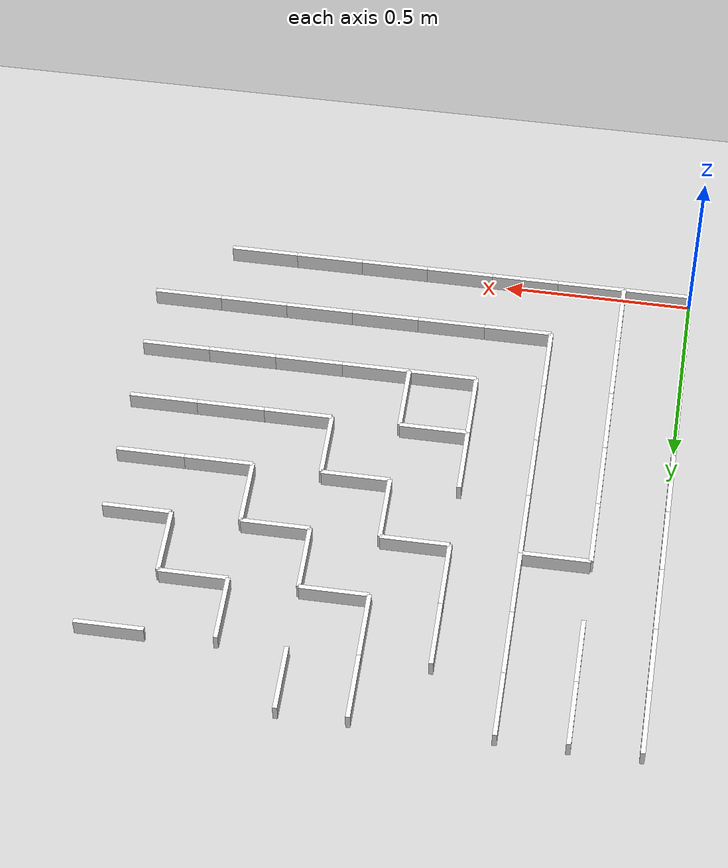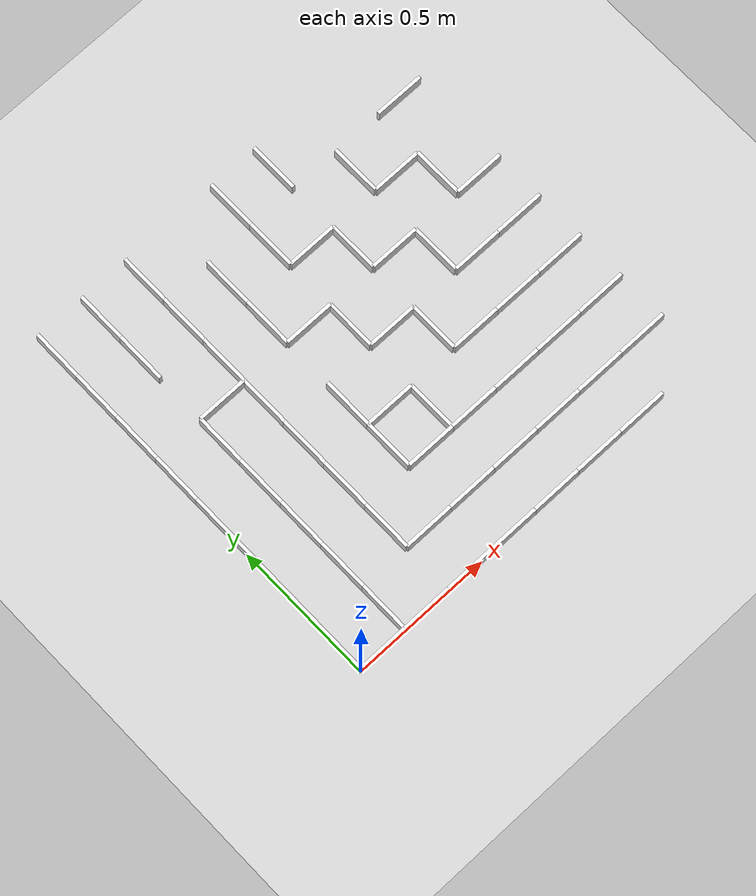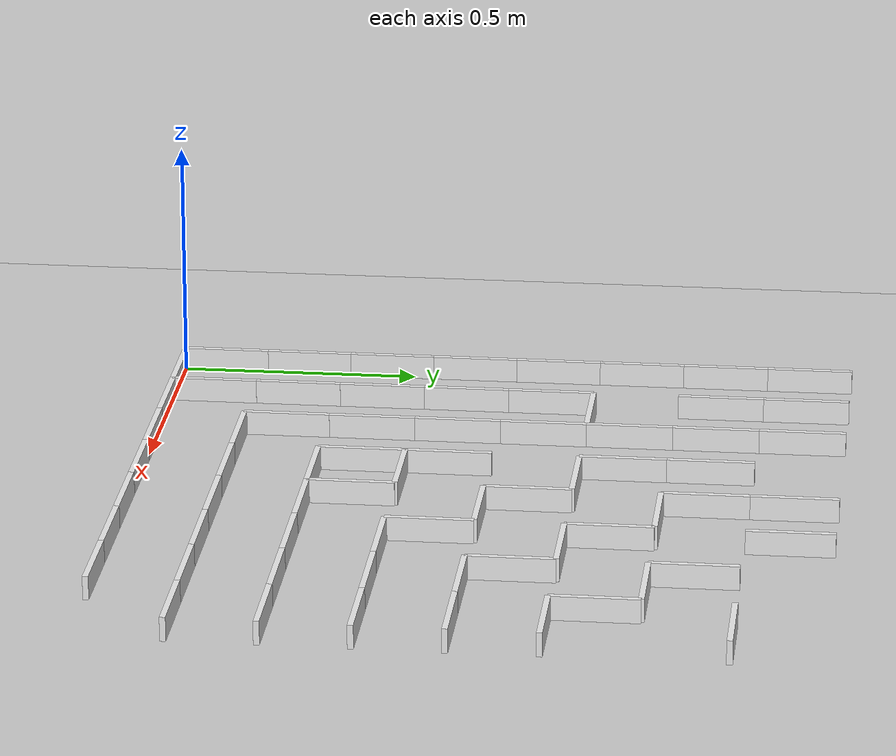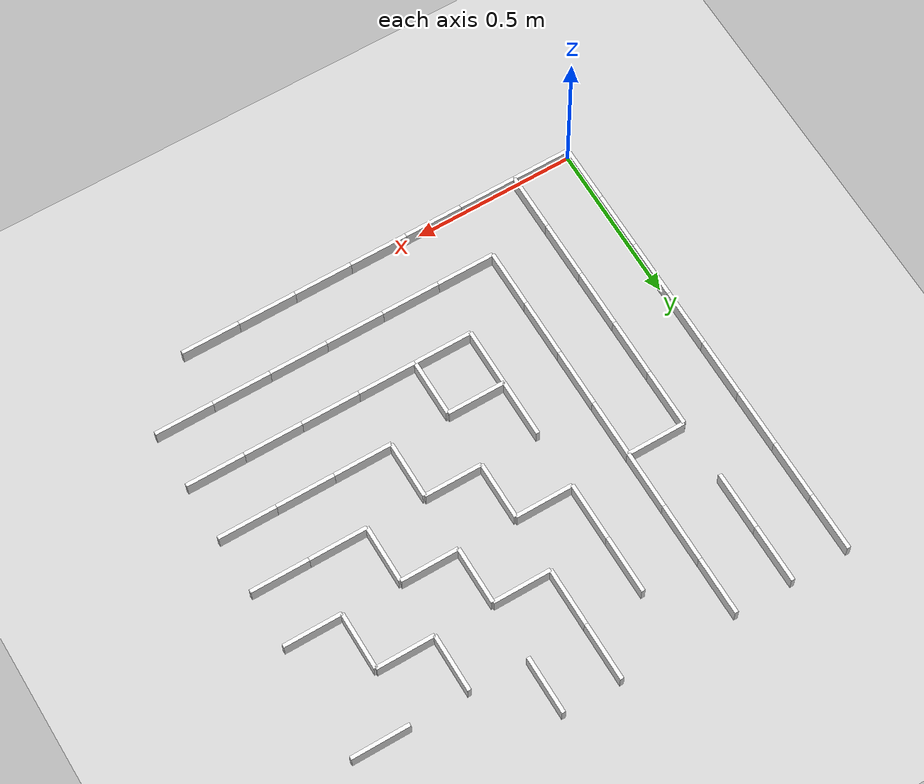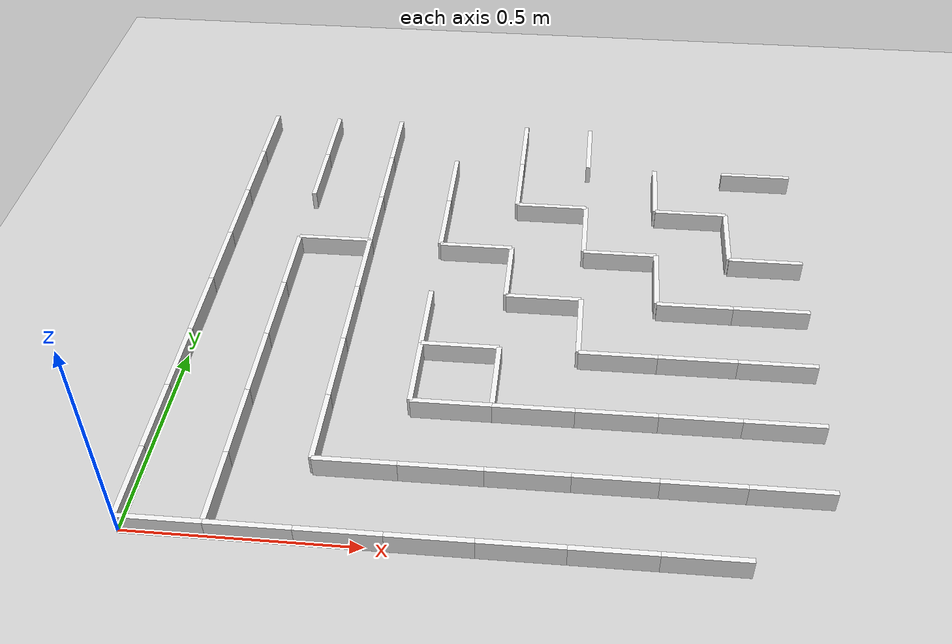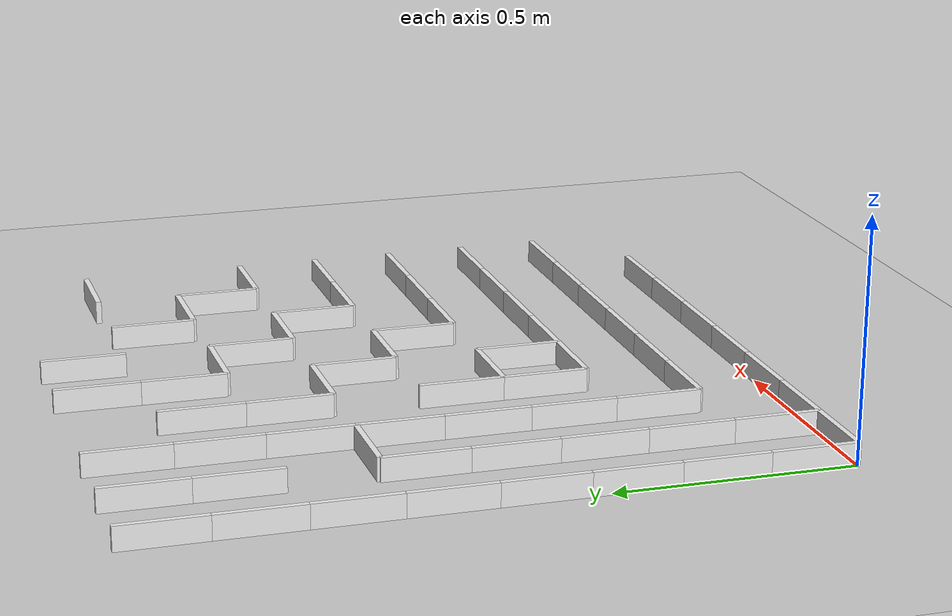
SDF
<sdf version="1.4">
 <world name="default">
  <include><uri>model://ground_plane</uri></include>
  <model name="wall">
   <pose>1.35 1.26 0.025 0 0 0</pose>
   <link name="link">
    <inertial>
     <mass>10</mass>
     <inertia><ixx>1</ixx><ixy>0</ixy><ixz>0</ixz><iyy>1</iyy><iyz>0</iyz><izz>1</izz></inertia>
    </inertial>
    <collision name="collision"><geometry><box><size>0.180 0.012 0.050</size></box></geometry></collision>
    <visual name="visual">
     <geometry><box><size>0.180 0.012 0.050</size></box></geometry>
     <material>
      <script><uri>file://media/materials/scripts/gazebo.material</uri><name>Gazebo/White</name></script>
     </material>
    </visual>
    <velocity_decay><linear>0</linear><angular>0</angular></velocity_decay>
   </link>
   <static>1</static>
  </model>
  <model name="wall">
   <pose>0.81 1.08 0.025 0 0 0</pose>
   <link name="link">
    <inertial>
     <mass>10</mass>
     <inertia><ixx>1</ixx><ixy>0</ixy><ixz>0</ixz><iyy>1</iyy><iyz>0</iyz><izz>1</izz></inertia>
    </inertial>
    <collision name="collision"><geometry><box><size>0.180 0.012 0.050</size></box></geometry></collision>
    <visual name="visual">
     <geometry><box><size>0.180 0.012 0.050</size></box></geometry>
     <material>
      <script><uri>file://media/materials/scripts/gazebo.material</uri><name>Gazebo/White</name></script>
     </material>
    </visual>
    <velocity_decay><linear>0</linear><angular>0</angular></velocity_decay>
   </link>
   <static>1</static>
  </model>
  <model name="wall">
   <pose>1.17 1.08 0.025 0 0 0</pose>
   <link name="link">
    <inertial>
     <mass>10</mass>
     <inertia><ixx>1</ixx><ixy>0</ixy><ixz>0</ixz><iyy>1</iyy><iyz>0</iyz><izz>1</izz></inertia>
    </inertial>
    <collision name="collision"><geometry><box><size>0.180 0.012 0.050</size></box></geometry></collision>
    <visual name="visual">
     <geometry><box><size>0.180 0.012 0.050</size></box></geometry>
     <material>
      <script><uri>file://media/materials/scripts/gazebo.material</uri><name>Gazebo/White</name></script>
     </material>
    </visual>
    <velocity_decay><linear>0</linear><angular>0</angular></velocity_decay>
   </link>
   <static>1</static>
  </model>
  <model name="wall">
   <pose>0.27 0.9 0.025 0 0 0</pose>
   <link name="link">
    <inertial>
     <mass>10</mass>
     <inertia><ixx>1</ixx><ixy>0</ixy><ixz>0</ixz><iyy>1</iyy><iyz>0</iyz><izz>1</izz></inertia>
    </inertial>
    <collision name="collision"><geometry><box><size>0.180 0.012 0.050</size></box></geometry></collision>
    <visual name="visual">
     <geometry><box><size>0.180 0.012 0.050</size></box></geometry>
     <material>
      <script><uri>file://media/materials/scripts/gazebo.material</uri><name>Gazebo/White</name></script>
     </material>
    </visual>
    <velocity_decay><linear>0</linear><angular>0</angular></velocity_decay>
   </link>
   <static>1</static>
  </model>
  <model name="wall">
   <pose>0.63 0.9 0.025 0 0 0</pose>
   <link name="link">
    <inertial>
     <mass>10</mass>
     <inertia><ixx>1</ixx><ixy>0</ixy><ixz>0</ixz><iyy>1</iyy><iyz>0</iyz><izz>1</izz></inertia>
    </inertial>
    <collision name="collision"><geometry><box><size>0.180 0.012 0.050</size></box></geometry></collision>
    <visual name="visual">
     <geometry><box><size>0.180 0.012 0.050</size></box></geometry>
     <material>
      <script><uri>file://media/materials/scripts/gazebo.material</uri><name>Gazebo/White</name></script>
     </material>
    </visual>
    <velocity_decay><linear>0</linear><angular>0</angular></velocity_decay>
   </link>
   <static>1</static>
  </model>
  <model name="wall">
   <pose>0.99 0.9 0.025 0 0 0</pose>
   <link name="link">
    <inertial>
     <mass>10</mass>
     <inertia><ixx>1</ixx><ixy>0</ixy><ixz>0</ixz><iyy>1</iyy><iyz>0</iyz><izz>1</izz></inertia>
    </inertial>
    <collision name="collision"><geometry><box><size>0.180 0.012 0.050</size></box></geometry></collision>
    <visual name="visual">
     <geometry><box><size>0.180 0.012 0.050</size></box></geometry>
     <material>
      <script><uri>file://media/materials/scripts/gazebo.material</uri><name>Gazebo/White</name></script>
     </material>
    </visual>
    <velocity_decay><linear>0</linear><angular>0</angular></velocity_decay>
   </link>
   <static>1</static>
  </model>
  <model name="wall">
   <pose>1.35 0.9 0.025 0 0 0</pose>
   <link name="link">
    <inertial>
     <mass>10</mass>
     <inertia><ixx>1</ixx><ixy>0</ixy><ixz>0</ixz><iyy>1</iyy><iyz>0</iyz><izz>1</izz></inertia>
    </inertial>
    <collision name="collision"><geometry><box><size>0.180 0.012 0.050</size></box></geometry></collision>
    <visual name="visual">
     <geometry><box><size>0.180 0.012 0.050</size></box></geometry>
     <material>
      <script><uri>file://media/materials/scripts/gazebo.material</uri><name>Gazebo/White</name></script>
     </material>
    </visual>
    <velocity_decay><linear>0</linear><angular>0</angular></velocity_decay>
   </link>
   <static>1</static>
  </model>
  <model name="wall">
   <pose>0.81 0.72 0.025 0 0 0</pose>
   <link name="link">
    <inertial>
     <mass>10</mass>
     <inertia><ixx>1</ixx><ixy>0</ixy><ixz>0</ixz><iyy>1</iyy><iyz>0</iyz><izz>1</izz></inertia>
    </inertial>
    <collision name="collision"><geometry><box><size>0.180 0.012 0.050</size></box></geometry></collision>
    <visual name="visual">
     <geometry><box><size>0.180 0.012 0.050</size></box></geometry>
     <material>
      <script><uri>file://media/materials/scripts/gazebo.material</uri><name>Gazebo/White</name></script>
     </material>
    </visual>
    <velocity_decay><linear>0</linear><angular>0</angular></velocity_decay>
   </link>
   <static>1</static>
  </model>
  <model name="wall">
   <pose>1.17 0.72 0.025 0 0 0</pose>
   <link name="link">
    <inertial>
     <mass>10</mass>
     <inertia><ixx>1</ixx><ixy>0</ixy><ixz>0</ixz><iyy>1</iyy><iyz>0</iyz><izz>1</izz></inertia>
    </inertial>
    <collision name="collision"><geometry><box><size>0.180 0.012 0.050</size></box></geometry></collision>
    <visual name="visual">
     <geometry><box><size>0.180 0.012 0.050</size></box></geometry>
     <material>
      <script><uri>file://media/materials/scripts/gazebo.material</uri><name>Gazebo/White</name></script>
     </material>
    </visual>
    <velocity_decay><linear>0</linear><angular>0</angular></velocity_decay>
   </link>
   <static>1</static>
  </model>
  <model name="wall">
   <pose>1.35 0.72 0.025 0 0 0</pose>
   <link name="link">
    <inertial>
     <mass>10</mass>
     <inertia><ixx>1</ixx><ixy>0</ixy><ixz>0</ixz><iyy>1</iyy><iyz>0</iyz><izz>1</izz></inertia>
    </inertial>
    <collision name="collision"><geometry><box><size>0.180 0.012 0.050</size></box></geometry></collision>
    <visual name="visual">
     <geometry><box><size>0.180 0.012 0.050</size></box></geometry>
     <material>
      <script><uri>file://media/materials/scripts/gazebo.material</uri><name>Gazebo/White</name></script>
     </material>
    </visual>
    <velocity_decay><linear>0</linear><angular>0</angular></velocity_decay>
   </link>
   <static>1</static>
  </model>
  <model name="wall">
   <pose>0.63 0.54 0.025 0 0 0</pose>
   <link name="link">
    <inertial>
     <mass>10</mass>
     <inertia><ixx>1</ixx><ixy>0</ixy><ixz>0</ixz><iyy>1</iyy><iyz>0</iyz><izz>1</izz></inertia>
    </inertial>
    <collision name="collision"><geometry><box><size>0.180 0.012 0.050</size></box></geometry></collision>
    <visual name="visual">
     <geometry><box><size>0.180 0.012 0.050</size></box></geometry>
     <material>
      <script><uri>file://media/materials/scripts/gazebo.material</uri><name>Gazebo/White</name></script>
     </material>
    </visual>
    <velocity_decay><linear>0</linear><angular>0</angular></velocity_decay>
   </link>
   <static>1</static>
  </model>
  <model name="wall">
   <pose>0.99 0.54 0.025 0 0 0</pose>
   <link name="link">
    <inertial>
     <mass>10</mass>
     <inertia><ixx>1</ixx><ixy>0</ixy><ixz>0</ixz><iyy>1</iyy><iyz>0</iyz><izz>1</izz></inertia>
    </inertial>
    <collision name="collision"><geometry><box><size>0.180 0.012 0.050</size></box></geometry></collision>
    <visual name="visual">
     <geometry><box><size>0.180 0.012 0.050</size></box></geometry>
     <material>
      <script><uri>file://media/materials/scripts/gazebo.material</uri><name>Gazebo/White</name></script>
     </material>
    </visual>
    <velocity_decay><linear>0</linear><angular>0</angular></velocity_decay>
   </link>
   <static>1</static>
  </model>
  <model name="wall">
   <pose>1.17 0.54 0.025 0 0 0</pose>
   <link name="link">
    <inertial>
     <mass>10</mass>
     <inertia><ixx>1</ixx><ixy>0</ixy><ixz>0</ixz><iyy>1</iyy><iyz>0</iyz><izz>1</izz></inertia>
    </inertial>
    <collision name="collision"><geometry><box><size>0.180 0.012 0.050</size></box></geometry></collision>
    <visual name="visual">
     <geometry><box><size>0.180 0.012 0.050</size></box></geometry>
     <material>
      <script><uri>file://media/materials/scripts/gazebo.material</uri><name>Gazebo/White</name></script>
     </material>
    </visual>
    <velocity_decay><linear>0</linear><angular>0</angular></velocity_decay>
   </link>
   <static>1</static>
  </model>
  <model name="wall">
   <pose>1.35 0.54 0.025 0 0 0</pose>
   <link name="link">
    <inertial>
     <mass>10</mass>
     <inertia><ixx>1</ixx><ixy>0</ixy><ixz>0</ixz><iyy>1</iyy><iyz>0</iyz><izz>1</izz></inertia>
    </inertial>
    <collision name="collision"><geometry><box><size>0.180 0.012 0.050</size></box></geometry></collision>
    <visual name="visual">
     <geometry><box><size>0.180 0.012 0.050</size></box></geometry>
     <material>
      <script><uri>file://media/materials/scripts/gazebo.material</uri><name>Gazebo/White</name></script>
     </material>
    </visual>
    <velocity_decay><linear>0</linear><angular>0</angular></velocity_decay>
   </link>
   <static>1</static>
  </model>
  <model name="wall">
   <pose>0.63 0.36 0.025 0 0 0</pose>
   <link name="link">
    <inertial>
     <mass>10</mass>
     <inertia><ixx>1</ixx><ixy>0</ixy><ixz>0</ixz><iyy>1</iyy><iyz>0</iyz><izz>1</izz></inertia>
    </inertial>
    <collision name="collision"><geometry><box><size>0.180 0.012 0.050</size></box></geometry></collision>
    <visual name="visual">
     <geometry><box><size>0.180 0.012 0.050</size></box></geometry>
     <material>
      <script><uri>file://media/materials/scripts/gazebo.material</uri><name>Gazebo/White</name></script>
     </material>
    </visual>
    <velocity_decay><linear>0</linear><angular>0</angular></velocity_decay>
   </link>
   <static>1</static>
  </model>
  <model name="wall">
   <pose>0.81 0.36 0.025 0 0 0</pose>
   <link name="link">
    <inertial>
     <mass>10</mass>
     <inertia><ixx>1</ixx><ixy>0</ixy><ixz>0</ixz><iyy>1</iyy><iyz>0</iyz><izz>1</izz></inertia>
    </inertial>
    <collision name="collision"><geometry><box><size>0.180 0.012 0.050</size></box></geometry></collision>
    <visual name="visual">
     <geometry><box><size>0.180 0.012 0.050</size></box></geometry>
     <material>
      <script><uri>file://media/materials/scripts/gazebo.material</uri><name>Gazebo/White</name></script>
     </material>
    </visual>
    <velocity_decay><linear>0</linear><angular>0</angular></velocity_decay>
   </link>
   <static>1</static>
  </model>
  <model name="wall">
   <pose>0.99 0.36 0.025 0 0 0</pose>
   <link name="link">
    <inertial>
     <mass>10</mass>
     <inertia><ixx>1</ixx><ixy>0</ixy><ixz>0</ixz><iyy>1</iyy><iyz>0</iyz><izz>1</izz></inertia>
    </inertial>
    <collision name="collision"><geometry><box><size>0.180 0.012 0.050</size></box></geometry></collision>
    <visual name="visual">
     <geometry><box><size>0.180 0.012 0.050</size></box></geometry>
     <material>
      <script><uri>file://media/materials/scripts/gazebo.material</uri><name>Gazebo/White</name></script>
     </material>
    </visual>
    <velocity_decay><linear>0</linear><angular>0</angular></velocity_decay>
   </link>
   <static>1</static>
  </model>
  <model name="wall">
   <pose>1.17 0.36 0.025 0 0 0</pose>
   <link name="link">
    <inertial>
     <mass>10</mass>
     <inertia><ixx>1</ixx><ixy>0</ixy><ixz>0</ixz><iyy>1</iyy><iyz>0</iyz><izz>1</izz></inertia>
    </inertial>
    <collision name="collision"><geometry><box><size>0.180 0.012 0.050</size></box></geometry></collision>
    <visual name="visual">
     <geometry><box><size>0.180 0.012 0.050</size></box></geometry>
     <material>
      <script><uri>file://media/materials/scripts/gazebo.material</uri><name>Gazebo/White</name></script>
     </material>
    </visual>
    <velocity_decay><linear>0</linear><angular>0</angular></velocity_decay>
   </link>
   <static>1</static>
  </model>
  <model name="wall">
   <pose>1.35 0.36 0.025 0 0 0</pose>
   <link name="link">
    <inertial>
     <mass>10</mass>
     <inertia><ixx>1</ixx><ixy>0</ixy><ixz>0</ixz><iyy>1</iyy><iyz>0</iyz><izz>1</izz></inertia>
    </inertial>
    <collision name="collision"><geometry><box><size>0.180 0.012 0.050</size></box></geometry></collision>
    <visual name="visual">
     <geometry><box><size>0.180 0.012 0.050</size></box></geometry>
     <material>
      <script><uri>file://media/materials/scripts/gazebo.material</uri><name>Gazebo/White</name></script>
     </material>
    </visual>
    <velocity_decay><linear>0</linear><angular>0</angular></velocity_decay>
   </link>
   <static>1</static>
  </model>
  <model name="wall">
   <pose>0.45 0.18 0.025 0 0 0</pose>
   <link name="link">
    <inertial>
     <mass>10</mass>
     <inertia><ixx>1</ixx><ixy>0</ixy><ixz>0</ixz><iyy>1</iyy><iyz>0</iyz><izz>1</izz></inertia>
    </inertial>
    <collision name="collision"><geometry><box><size>0.180 0.012 0.050</size></box></geometry></collision>
    <visual name="visual">
     <geometry><box><size>0.180 0.012 0.050</size></box></geometry>
     <material>
      <script><uri>file://media/materials/scripts/gazebo.material</uri><name>Gazebo/White</name></script>
     </material>
    </visual>
    <velocity_decay><linear>0</linear><angular>0</angular></velocity_decay>
   </link>
   <static>1</static>
  </model>
  <model name="wall">
   <pose>0.63 0.18 0.025 0 0 0</pose>
   <link name="link">
    <inertial>
     <mass>10</mass>
     <inertia><ixx>1</ixx><ixy>0</ixy><ixz>0</ixz><iyy>1</iyy><iyz>0</iyz><izz>1</izz></inertia>
    </inertial>
    <collision name="collision"><geometry><box><size>0.180 0.012 0.050</size></box></geometry></collision>
    <visual name="visual">
     <geometry><box><size>0.180 0.012 0.050</size></box></geometry>
     <material>
      <script><uri>file://media/materials/scripts/gazebo.material</uri><name>Gazebo/White</name></script>
     </material>
    </visual>
    <velocity_decay><linear>0</linear><angular>0</angular></velocity_decay>
   </link>
   <static>1</static>
  </model>
  <model name="wall">
   <pose>0.81 0.18 0.025 0 0 0</pose>
   <link name="link">
    <inertial>
     <mass>10</mass>
     <inertia><ixx>1</ixx><ixy>0</ixy><ixz>0</ixz><iyy>1</iyy><iyz>0</iyz><izz>1</izz></inertia>
    </inertial>
    <collision name="collision"><geometry><box><size>0.180 0.012 0.050</size></box></geometry></collision>
    <visual name="visual">
     <geometry><box><size>0.180 0.012 0.050</size></box></geometry>
     <material>
      <script><uri>file://media/materials/scripts/gazebo.material</uri><name>Gazebo/White</name></script>
     </material>
    </visual>
    <velocity_decay><linear>0</linear><angular>0</angular></velocity_decay>
   </link>
   <static>1</static>
  </model>
  <model name="wall">
   <pose>0.99 0.18 0.025 0 0 0</pose>
   <link name="link">
    <inertial>
     <mass>10</mass>
     <inertia><ixx>1</ixx><ixy>0</ixy><ixz>0</ixz><iyy>1</iyy><iyz>0</iyz><izz>1</izz></inertia>
    </inertial>
    <collision name="collision"><geometry><box><size>0.180 0.012 0.050</size></box></geometry></collision>
    <visual name="visual">
     <geometry><box><size>0.180 0.012 0.050</size></box></geometry>
     <material>
      <script><uri>file://media/materials/scripts/gazebo.material</uri><name>Gazebo/White</name></script>
     </material>
    </visual>
    <velocity_decay><linear>0</linear><angular>0</angular></velocity_decay>
   </link>
   <static>1</static>
  </model>
  <model name="wall">
   <pose>1.17 0.18 0.025 0 0 0</pose>
   <link name="link">
    <inertial>
     <mass>10</mass>
     <inertia><ixx>1</ixx><ixy>0</ixy><ixz>0</ixz><iyy>1</iyy><iyz>0</iyz><izz>1</izz></inertia>
    </inertial>
    <collision name="collision"><geometry><box><size>0.180 0.012 0.050</size></box></geometry></collision>
    <visual name="visual">
     <geometry><box><size>0.180 0.012 0.050</size></box></geometry>
     <material>
      <script><uri>file://media/materials/scripts/gazebo.material</uri><name>Gazebo/White</name></script>
     </material>
    </visual>
    <velocity_decay><linear>0</linear><angular>0</angular></velocity_decay>
   </link>
   <static>1</static>
  </model>
  <model name="wall">
   <pose>1.35 0.18 0.025 0 0 0</pose>
   <link name="link">
    <inertial>
     <mass>10</mass>
     <inertia><ixx>1</ixx><ixy>0</ixy><ixz>0</ixz><iyy>1</iyy><iyz>0</iyz><izz>1</izz></inertia>
    </inertial>
    <collision name="collision"><geometry><box><size>0.180 0.012 0.050</size></box></geometry></collision>
    <visual name="visual">
     <geometry><box><size>0.180 0.012 0.050</size></box></geometry>
     <material>
      <script><uri>file://media/materials/scripts/gazebo.material</uri><name>Gazebo/White</name></script>
     </material>
    </visual>
    <velocity_decay><linear>0</linear><angular>0</angular></velocity_decay>
   </link>
   <static>1</static>
  </model>
  <model name="wall">
   <pose>0.09 0.0 0.025 0 0 0</pose>
   <link name="link">
    <inertial>
     <mass>10</mass>
     <inertia><ixx>1</ixx><ixy>0</ixy><ixz>0</ixz><iyy>1</iyy><iyz>0</iyz><izz>1</izz></inertia>
    </inertial>
    <collision name="collision"><geometry><box><size>0.180 0.012 0.050</size></box></geometry></collision>
    <visual name="visual">
     <geometry><box><size>0.180 0.012 0.050</size></box></geometry>
     <material>
      <script><uri>file://media/materials/scripts/gazebo.material</uri><name>Gazebo/White</name></script>
     </material>
    </visual>
    <velocity_decay><linear>0</linear><angular>0</angular></velocity_decay>
   </link>
   <static>1</static>
  </model>
  <model name="wall">
   <pose>0.27 0.0 0.025 0 0 0</pose>
   <link name="link">
    <inertial>
     <mass>10</mass>
     <inertia><ixx>1</ixx><ixy>0</ixy><ixz>0</ixz><iyy>1</iyy><iyz>0</iyz><izz>1</izz></inertia>
    </inertial>
    <collision name="collision"><geometry><box><size>0.180 0.012 0.050</size></box></geometry></collision>
    <visual name="visual">
     <geometry><box><size>0.180 0.012 0.050</size></box></geometry>
     <material>
      <script><uri>file://media/materials/scripts/gazebo.material</uri><name>Gazebo/White</name></script>
     </material>
    </visual>
    <velocity_decay><linear>0</linear><angular>0</angular></velocity_decay>
   </link>
   <static>1</static>
  </model>
  <model name="wall">
   <pose>0.45 0.0 0.025 0 0 0</pose>
   <link name="link">
    <inertial>
     <mass>10</mass>
     <inertia><ixx>1</ixx><ixy>0</ixy><ixz>0</ixz><iyy>1</iyy><iyz>0</iyz><izz>1</izz></inertia>
    </inertial>
    <collision name="collision"><geometry><box><size>0.180 0.012 0.050</size></box></geometry></collision>
    <visual name="visual">
     <geometry><box><size>0.180 0.012 0.050</size></box></geometry>
     <material>
      <script><uri>file://media/materials/scripts/gazebo.material</uri><name>Gazebo/White</name></script>
     </material>
    </visual>
    <velocity_decay><linear>0</linear><angular>0</angular></velocity_decay>
   </link>
   <static>1</static>
  </model>
  <model name="wall">
   <pose>0.63 0.0 0.025 0 0 0</pose>
   <link name="link">
    <inertial>
     <mass>10</mass>
     <inertia><ixx>1</ixx><ixy>0</ixy><ixz>0</ixz><iyy>1</iyy><iyz>0</iyz><izz>1</izz></inertia>
    </inertial>
    <collision name="collision"><geometry><box><size>0.180 0.012 0.050</size></box></geometry></collision>
    <visual name="visual">
     <geometry><box><size>0.180 0.012 0.050</size></box></geometry>
     <material>
      <script><uri>file://media/materials/scripts/gazebo.material</uri><name>Gazebo/White</name></script>
     </material>
    </visual>
    <velocity_decay><linear>0</linear><angular>0</angular></velocity_decay>
   </link>
   <static>1</static>
  </model>
  <model name="wall">
   <pose>0.81 0.0 0.025 0 0 0</pose>
   <link name="link">
    <inertial>
     <mass>10</mass>
     <inertia><ixx>1</ixx><ixy>0</ixy><ixz>0</ixz><iyy>1</iyy><iyz>0</iyz><izz>1</izz></inertia>
    </inertial>
    <collision name="collision"><geometry><box><size>0.180 0.012 0.050</size></box></geometry></collision>
    <visual name="visual">
     <geometry><box><size>0.180 0.012 0.050</size></box></geometry>
     <material>
      <script><uri>file://media/materials/scripts/gazebo.material</uri><name>Gazebo/White</name></script>
     </material>
    </visual>
    <velocity_decay><linear>0</linear><angular>0</angular></velocity_decay>
   </link>
   <static>1</static>
  </model>
  <model name="wall">
   <pose>0.99 0.0 0.025 0 0 0</pose>
   <link name="link">
    <inertial>
     <mass>10</mass>
     <inertia><ixx>1</ixx><ixy>0</ixy><ixz>0</ixz><iyy>1</iyy><iyz>0</iyz><izz>1</izz></inertia>
    </inertial>
    <collision name="collision"><geometry><box><size>0.180 0.012 0.050</size></box></geometry></collision>
    <visual name="visual">
     <geometry><box><size>0.180 0.012 0.050</size></box></geometry>
     <material>
      <script><uri>file://media/materials/scripts/gazebo.material</uri><name>Gazebo/White</name></script>
     </material>
    </visual>
    <velocity_decay><linear>0</linear><angular>0</angular></velocity_decay>
   </link>
   <static>1</static>
  </model>
  <model name="wall">
   <pose>1.17 0.0 0.025 0 0 0</pose>
   <link name="link">
    <inertial>
     <mass>10</mass>
     <inertia><ixx>1</ixx><ixy>0</ixy><ixz>0</ixz><iyy>1</iyy><iyz>0</iyz><izz>1</izz></inertia>
    </inertial>
    <collision name="collision"><geometry><box><size>0.180 0.012 0.050</size></box></geometry></collision>
    <visual name="visual">
     <geometry><box><size>0.180 0.012 0.050</size></box></geometry>
     <material>
      <script><uri>file://media/materials/scripts/gazebo.material</uri><name>Gazebo/White</name></script>
     </material>
    </visual>
    <velocity_decay><linear>0</linear><angular>0</angular></velocity_decay>
   </link>
   <static>1</static>
  </model>
  <model name="wall">
   <pose>0.0 1.35 0.025 0 0 1.57</pose>
   <link name="link">
    <inertial>
     <mass>10</mass>
     <inertia><ixx>1</ixx><ixy>0</ixy><ixz>0</ixz><iyy>1</iyy><iyz>0</iyz><izz>1</izz></inertia>
    </inertial>
    <collision name="collision"><geometry><box><size>0.180 0.012 0.050</size></box></geometry></collision>
    <visual name="visual">
     <geometry><box><size>0.180 0.012 0.050</size></box></geometry>
     <material>
      <script><uri>file://media/materials/scripts/gazebo.material</uri><name>Gazebo/White</name></script>
     </material>
    </visual>
    <velocity_decay><linear>0</linear><angular>0</angular></velocity_decay>
   </link>
   <static>1</static>
  </model>
  <model name="wall">
   <pose>0.18 1.35 0.025 0 0 1.57</pose>
   <link name="link">
    <inertial>
     <mass>10</mass>
     <inertia><ixx>1</ixx><ixy>0</ixy><ixz>0</ixz><iyy>1</iyy><iyz>0</iyz><izz>1</izz></inertia>
    </inertial>
    <collision name="collision"><geometry><box><size>0.180 0.012 0.050</size></box></geometry></collision>
    <visual name="visual">
     <geometry><box><size>0.180 0.012 0.050</size></box></geometry>
     <material>
      <script><uri>file://media/materials/scripts/gazebo.material</uri><name>Gazebo/White</name></script>
     </material>
    </visual>
    <velocity_decay><linear>0</linear><angular>0</angular></velocity_decay>
   </link>
   <static>1</static>
  </model>
  <model name="wall">
   <pose>0.36 1.35 0.025 0 0 1.57</pose>
   <link name="link">
    <inertial>
     <mass>10</mass>
     <inertia><ixx>1</ixx><ixy>0</ixy><ixz>0</ixz><iyy>1</iyy><iyz>0</iyz><izz>1</izz></inertia>
    </inertial>
    <collision name="collision"><geometry><box><size>0.180 0.012 0.050</size></box></geometry></collision>
    <visual name="visual">
     <geometry><box><size>0.180 0.012 0.050</size></box></geometry>
     <material>
      <script><uri>file://media/materials/scripts/gazebo.material</uri><name>Gazebo/White</name></script>
     </material>
    </visual>
    <velocity_decay><linear>0</linear><angular>0</angular></velocity_decay>
   </link>
   <static>1</static>
  </model>
  <model name="wall">
   <pose>0.72 1.35 0.025 0 0 1.57</pose>
   <link name="link">
    <inertial>
     <mass>10</mass>
     <inertia><ixx>1</ixx><ixy>0</ixy><ixz>0</ixz><iyy>1</iyy><iyz>0</iyz><izz>1</izz></inertia>
    </inertial>
    <collision name="collision"><geometry><box><size>0.180 0.012 0.050</size></box></geometry></collision>
    <visual name="visual">
     <geometry><box><size>0.180 0.012 0.050</size></box></geometry>
     <material>
      <script><uri>file://media/materials/scripts/gazebo.material</uri><name>Gazebo/White</name></script>
     </material>
    </visual>
    <velocity_decay><linear>0</linear><angular>0</angular></velocity_decay>
   </link>
   <static>1</static>
  </model>
  <model name="wall">
   <pose>0.9 1.35 0.025 0 0 1.57</pose>
   <link name="link">
    <inertial>
     <mass>10</mass>
     <inertia><ixx>1</ixx><ixy>0</ixy><ixz>0</ixz><iyy>1</iyy><iyz>0</iyz><izz>1</izz></inertia>
    </inertial>
    <collision name="collision"><geometry><box><size>0.180 0.012 0.050</size></box></geometry></collision>
    <visual name="visual">
     <geometry><box><size>0.180 0.012 0.050</size></box></geometry>
     <material>
      <script><uri>file://media/materials/scripts/gazebo.material</uri><name>Gazebo/White</name></script>
     </material>
    </visual>
    <velocity_decay><linear>0</linear><angular>0</angular></velocity_decay>
   </link>
   <static>1</static>
  </model>
  <model name="wall">
   <pose>0.0 1.17 0.025 0 0 1.57</pose>
   <link name="link">
    <inertial>
     <mass>10</mass>
     <inertia><ixx>1</ixx><ixy>0</ixy><ixz>0</ixz><iyy>1</iyy><iyz>0</iyz><izz>1</izz></inertia>
    </inertial>
    <collision name="collision"><geometry><box><size>0.180 0.012 0.050</size></box></geometry></collision>
    <visual name="visual">
     <geometry><box><size>0.180 0.012 0.050</size></box></geometry>
     <material>
      <script><uri>file://media/materials/scripts/gazebo.material</uri><name>Gazebo/White</name></script>
     </material>
    </visual>
    <velocity_decay><linear>0</linear><angular>0</angular></velocity_decay>
   </link>
   <static>1</static>
  </model>
  <model name="wall">
   <pose>0.18 1.17 0.025 0 0 1.57</pose>
   <link name="link">
    <inertial>
     <mass>10</mass>
     <inertia><ixx>1</ixx><ixy>0</ixy><ixz>0</ixz><iyy>1</iyy><iyz>0</iyz><izz>1</izz></inertia>
    </inertial>
    <collision name="collision"><geometry><box><size>0.180 0.012 0.050</size></box></geometry></collision>
    <visual name="visual">
     <geometry><box><size>0.180 0.012 0.050</size></box></geometry>
     <material>
      <script><uri>file://media/materials/scripts/gazebo.material</uri><name>Gazebo/White</name></script>
     </material>
    </visual>
    <velocity_decay><linear>0</linear><angular>0</angular></velocity_decay>
   </link>
   <static>1</static>
  </model>
  <model name="wall">
   <pose>0.36 1.17 0.025 0 0 1.57</pose>
   <link name="link">
    <inertial>
     <mass>10</mass>
     <inertia><ixx>1</ixx><ixy>0</ixy><ixz>0</ixz><iyy>1</iyy><iyz>0</iyz><izz>1</izz></inertia>
    </inertial>
    <collision name="collision"><geometry><box><size>0.180 0.012 0.050</size></box></geometry></collision>
    <visual name="visual">
     <geometry><box><size>0.180 0.012 0.050</size></box></geometry>
     <material>
      <script><uri>file://media/materials/scripts/gazebo.material</uri><name>Gazebo/White</name></script>
     </material>
    </visual>
    <velocity_decay><linear>0</linear><angular>0</angular></velocity_decay>
   </link>
   <static>1</static>
  </model>
  <model name="wall">
   <pose>0.54 1.17 0.025 0 0 1.57</pose>
   <link name="link">
    <inertial>
     <mass>10</mass>
     <inertia><ixx>1</ixx><ixy>0</ixy><ixz>0</ixz><iyy>1</iyy><iyz>0</iyz><izz>1</izz></inertia>
    </inertial>
    <collision name="collision"><geometry><box><size>0.180 0.012 0.050</size></box></geometry></collision>
    <visual name="visual">
     <geometry><box><size>0.180 0.012 0.050</size></box></geometry>
     <material>
      <script><uri>file://media/materials/scripts/gazebo.material</uri><name>Gazebo/White</name></script>
     </material>
    </visual>
    <velocity_decay><linear>0</linear><angular>0</angular></velocity_decay>
   </link>
   <static>1</static>
  </model>
  <model name="wall">
   <pose>0.72 1.17 0.025 0 0 1.57</pose>
   <link name="link">
    <inertial>
     <mass>10</mass>
     <inertia><ixx>1</ixx><ixy>0</ixy><ixz>0</ixz><iyy>1</iyy><iyz>0</iyz><izz>1</izz></inertia>
    </inertial>
    <collision name="collision"><geometry><box><size>0.180 0.012 0.050</size></box></geometry></collision>
    <visual name="visual">
     <geometry><box><size>0.180 0.012 0.050</size></box></geometry>
     <material>
      <script><uri>file://media/materials/scripts/gazebo.material</uri><name>Gazebo/White</name></script>
     </material>
    </visual>
    <velocity_decay><linear>0</linear><angular>0</angular></velocity_decay>
   </link>
   <static>1</static>
  </model>
  <model name="wall">
   <pose>1.08 1.17 0.025 0 0 1.57</pose>
   <link name="link">
    <inertial>
     <mass>10</mass>
     <inertia><ixx>1</ixx><ixy>0</ixy><ixz>0</ixz><iyy>1</iyy><iyz>0</iyz><izz>1</izz></inertia>
    </inertial>
    <collision name="collision"><geometry><box><size>0.180 0.012 0.050</size></box></geometry></collision>
    <visual name="visual">
     <geometry><box><size>0.180 0.012 0.050</size></box></geometry>
     <material>
      <script><uri>file://media/materials/scripts/gazebo.material</uri><name>Gazebo/White</name></script>
     </material>
    </visual>
    <velocity_decay><linear>0</linear><angular>0</angular></velocity_decay>
   </link>
   <static>1</static>
  </model>
  <model name="wall">
   <pose>0.0 0.99 0.025 0 0 1.57</pose>
   <link name="link">
    <inertial>
     <mass>10</mass>
     <inertia><ixx>1</ixx><ixy>0</ixy><ixz>0</ixz><iyy>1</iyy><iyz>0</iyz><izz>1</izz></inertia>
    </inertial>
    <collision name="collision"><geometry><box><size>0.180 0.012 0.050</size></box></geometry></collision>
    <visual name="visual">
     <geometry><box><size>0.180 0.012 0.050</size></box></geometry>
     <material>
      <script><uri>file://media/materials/scripts/gazebo.material</uri><name>Gazebo/White</name></script>
     </material>
    </visual>
    <velocity_decay><linear>0</linear><angular>0</angular></velocity_decay>
   </link>
   <static>1</static>
  </model>
  <model name="wall">
   <pose>0.36 0.99 0.025 0 0 1.57</pose>
   <link name="link">
    <inertial>
     <mass>10</mass>
     <inertia><ixx>1</ixx><ixy>0</ixy><ixz>0</ixz><iyy>1</iyy><iyz>0</iyz><izz>1</izz></inertia>
    </inertial>
    <collision name="collision"><geometry><box><size>0.180 0.012 0.050</size></box></geometry></collision>
    <visual name="visual">
     <geometry><box><size>0.180 0.012 0.050</size></box></geometry>
     <material>
      <script><uri>file://media/materials/scripts/gazebo.material</uri><name>Gazebo/White</name></script>
     </material>
    </visual>
    <velocity_decay><linear>0</linear><angular>0</angular></velocity_decay>
   </link>
   <static>1</static>
  </model>
  <model name="wall">
   <pose>0.54 0.99 0.025 0 0 1.57</pose>
   <link name="link">
    <inertial>
     <mass>10</mass>
     <inertia><ixx>1</ixx><ixy>0</ixy><ixz>0</ixz><iyy>1</iyy><iyz>0</iyz><izz>1</izz></inertia>
    </inertial>
    <collision name="collision"><geometry><box><size>0.180 0.012 0.050</size></box></geometry></collision>
    <visual name="visual">
     <geometry><box><size>0.180 0.012 0.050</size></box></geometry>
     <material>
      <script><uri>file://media/materials/scripts/gazebo.material</uri><name>Gazebo/White</name></script>
     </material>
    </visual>
    <velocity_decay><linear>0</linear><angular>0</angular></velocity_decay>
   </link>
   <static>1</static>
  </model>
  <model name="wall">
   <pose>0.9 0.99 0.025 0 0 1.57</pose>
   <link name="link">
    <inertial>
     <mass>10</mass>
     <inertia><ixx>1</ixx><ixy>0</ixy><ixz>0</ixz><iyy>1</iyy><iyz>0</iyz><izz>1</izz></inertia>
    </inertial>
    <collision name="collision"><geometry><box><size>0.180 0.012 0.050</size></box></geometry></collision>
    <visual name="visual">
     <geometry><box><size>0.180 0.012 0.050</size></box></geometry>
     <material>
      <script><uri>file://media/materials/scripts/gazebo.material</uri><name>Gazebo/White</name></script>
     </material>
    </visual>
    <velocity_decay><linear>0</linear><angular>0</angular></velocity_decay>
   </link>
   <static>1</static>
  </model>
  <model name="wall">
   <pose>1.26 0.99 0.025 0 0 1.57</pose>
   <link name="link">
    <inertial>
     <mass>10</mass>
     <inertia><ixx>1</ixx><ixy>0</ixy><ixz>0</ixz><iyy>1</iyy><iyz>0</iyz><izz>1</izz></inertia>
    </inertial>
    <collision name="collision"><geometry><box><size>0.180 0.012 0.050</size></box></geometry></collision>
    <visual name="visual">
     <geometry><box><size>0.180 0.012 0.050</size></box></geometry>
     <material>
      <script><uri>file://media/materials/scripts/gazebo.material</uri><name>Gazebo/White</name></script>
     </material>
    </visual>
    <velocity_decay><linear>0</linear><angular>0</angular></velocity_decay>
   </link>
   <static>1</static>
  </model>
  <model name="wall">
   <pose>0.0 0.81 0.025 0 0 1.57</pose>
   <link name="link">
    <inertial>
     <mass>10</mass>
     <inertia><ixx>1</ixx><ixy>0</ixy><ixz>0</ixz><iyy>1</iyy><iyz>0</iyz><izz>1</izz></inertia>
    </inertial>
    <collision name="collision"><geometry><box><size>0.180 0.012 0.050</size></box></geometry></collision>
    <visual name="visual">
     <geometry><box><size>0.180 0.012 0.050</size></box></geometry>
     <material>
      <script><uri>file://media/materials/scripts/gazebo.material</uri><name>Gazebo/White</name></script>
     </material>
    </visual>
    <velocity_decay><linear>0</linear><angular>0</angular></velocity_decay>
   </link>
   <static>1</static>
  </model>
  <model name="wall">
   <pose>0.18 0.81 0.025 0 0 1.57</pose>
   <link name="link">
    <inertial>
     <mass>10</mass>
     <inertia><ixx>1</ixx><ixy>0</ixy><ixz>0</ixz><iyy>1</iyy><iyz>0</iyz><izz>1</izz></inertia>
    </inertial>
    <collision name="collision"><geometry><box><size>0.180 0.012 0.050</size></box></geometry></collision>
    <visual name="visual">
     <geometry><box><size>0.180 0.012 0.050</size></box></geometry>
     <material>
      <script><uri>file://media/materials/scripts/gazebo.material</uri><name>Gazebo/White</name></script>
     </material>
    </visual>
    <velocity_decay><linear>0</linear><angular>0</angular></velocity_decay>
   </link>
   <static>1</static>
  </model>
  <model name="wall">
   <pose>0.36 0.81 0.025 0 0 1.57</pose>
   <link name="link">
    <inertial>
     <mass>10</mass>
     <inertia><ixx>1</ixx><ixy>0</ixy><ixz>0</ixz><iyy>1</iyy><iyz>0</iyz><izz>1</izz></inertia>
    </inertial>
    <collision name="collision"><geometry><box><size>0.180 0.012 0.050</size></box></geometry></collision>
    <visual name="visual">
     <geometry><box><size>0.180 0.012 0.050</size></box></geometry>
     <material>
      <script><uri>file://media/materials/scripts/gazebo.material</uri><name>Gazebo/White</name></script>
     </material>
    </visual>
    <velocity_decay><linear>0</linear><angular>0</angular></velocity_decay>
   </link>
   <static>1</static>
  </model>
  <model name="wall">
   <pose>0.72 0.81 0.025 0 0 1.57</pose>
   <link name="link">
    <inertial>
     <mass>10</mass>
     <inertia><ixx>1</ixx><ixy>0</ixy><ixz>0</ixz><iyy>1</iyy><iyz>0</iyz><izz>1</izz></inertia>
    </inertial>
    <collision name="collision"><geometry><box><size>0.180 0.012 0.050</size></box></geometry></collision>
    <visual name="visual">
     <geometry><box><size>0.180 0.012 0.050</size></box></geometry>
     <material>
      <script><uri>file://media/materials/scripts/gazebo.material</uri><name>Gazebo/White</name></script>
     </material>
    </visual>
    <velocity_decay><linear>0</linear><angular>0</angular></velocity_decay>
   </link>
   <static>1</static>
  </model>
  <model name="wall">
   <pose>1.08 0.81 0.025 0 0 1.57</pose>
   <link name="link">
    <inertial>
     <mass>10</mass>
     <inertia><ixx>1</ixx><ixy>0</ixy><ixz>0</ixz><iyy>1</iyy><iyz>0</iyz><izz>1</izz></inertia>
    </inertial>
    <collision name="collision"><geometry><box><size>0.180 0.012 0.050</size></box></geometry></collision>
    <visual name="visual">
     <geometry><box><size>0.180 0.012 0.050</size></box></geometry>
     <material>
      <script><uri>file://media/materials/scripts/gazebo.material</uri><name>Gazebo/White</name></script>
     </material>
    </visual>
    <velocity_decay><linear>0</linear><angular>0</angular></velocity_decay>
   </link>
   <static>1</static>
  </model>
  <model name="wall">
   <pose>0.0 0.63 0.025 0 0 1.57</pose>
   <link name="link">
    <inertial>
     <mass>10</mass>
     <inertia><ixx>1</ixx><ixy>0</ixy><ixz>0</ixz><iyy>1</iyy><iyz>0</iyz><izz>1</izz></inertia>
    </inertial>
    <collision name="collision"><geometry><box><size>0.180 0.012 0.050</size></box></geometry></collision>
    <visual name="visual">
     <geometry><box><size>0.180 0.012 0.050</size></box></geometry>
     <material>
      <script><uri>file://media/materials/scripts/gazebo.material</uri><name>Gazebo/White</name></script>
     </material>
    </visual>
    <velocity_decay><linear>0</linear><angular>0</angular></velocity_decay>
   </link>
   <static>1</static>
  </model>
  <model name="wall">
   <pose>0.18 0.63 0.025 0 0 1.57</pose>
   <link name="link">
    <inertial>
     <mass>10</mass>
     <inertia><ixx>1</ixx><ixy>0</ixy><ixz>0</ixz><iyy>1</iyy><iyz>0</iyz><izz>1</izz></inertia>
    </inertial>
    <collision name="collision"><geometry><box><size>0.180 0.012 0.050</size></box></geometry></collision>
    <visual name="visual">
     <geometry><box><size>0.180 0.012 0.050</size></box></geometry>
     <material>
      <script><uri>file://media/materials/scripts/gazebo.material</uri><name>Gazebo/White</name></script>
     </material>
    </visual>
    <velocity_decay><linear>0</linear><angular>0</angular></velocity_decay>
   </link>
   <static>1</static>
  </model>
  <model name="wall">
   <pose>0.36 0.63 0.025 0 0 1.57</pose>
   <link name="link">
    <inertial>
     <mass>10</mass>
     <inertia><ixx>1</ixx><ixy>0</ixy><ixz>0</ixz><iyy>1</iyy><iyz>0</iyz><izz>1</izz></inertia>
    </inertial>
    <collision name="collision"><geometry><box><size>0.180 0.012 0.050</size></box></geometry></collision>
    <visual name="visual">
     <geometry><box><size>0.180 0.012 0.050</size></box></geometry>
     <material>
      <script><uri>file://media/materials/scripts/gazebo.material</uri><name>Gazebo/White</name></script>
     </material>
    </visual>
    <velocity_decay><linear>0</linear><angular>0</angular></velocity_decay>
   </link>
   <static>1</static>
  </model>
  <model name="wall">
   <pose>0.54 0.63 0.025 0 0 1.57</pose>
   <link name="link">
    <inertial>
     <mass>10</mass>
     <inertia><ixx>1</ixx><ixy>0</ixy><ixz>0</ixz><iyy>1</iyy><iyz>0</iyz><izz>1</izz></inertia>
    </inertial>
    <collision name="collision"><geometry><box><size>0.180 0.012 0.050</size></box></geometry></collision>
    <visual name="visual">
     <geometry><box><size>0.180 0.012 0.050</size></box></geometry>
     <material>
      <script><uri>file://media/materials/scripts/gazebo.material</uri><name>Gazebo/White</name></script>
     </material>
    </visual>
    <velocity_decay><linear>0</linear><angular>0</angular></velocity_decay>
   </link>
   <static>1</static>
  </model>
  <model name="wall">
   <pose>0.9 0.63 0.025 0 0 1.57</pose>
   <link name="link">
    <inertial>
     <mass>10</mass>
     <inertia><ixx>1</ixx><ixy>0</ixy><ixz>0</ixz><iyy>1</iyy><iyz>0</iyz><izz>1</izz></inertia>
    </inertial>
    <collision name="collision"><geometry><box><size>0.180 0.012 0.050</size></box></geometry></collision>
    <visual name="visual">
     <geometry><box><size>0.180 0.012 0.050</size></box></geometry>
     <material>
      <script><uri>file://media/materials/scripts/gazebo.material</uri><name>Gazebo/White</name></script>
     </material>
    </visual>
    <velocity_decay><linear>0</linear><angular>0</angular></velocity_decay>
   </link>
   <static>1</static>
  </model>
  <model name="wall">
   <pose>0.0 0.45 0.025 0 0 1.57</pose>
   <link name="link">
    <inertial>
     <mass>10</mass>
     <inertia><ixx>1</ixx><ixy>0</ixy><ixz>0</ixz><iyy>1</iyy><iyz>0</iyz><izz>1</izz></inertia>
    </inertial>
    <collision name="collision"><geometry><box><size>0.180 0.012 0.050</size></box></geometry></collision>
    <visual name="visual">
     <geometry><box><size>0.180 0.012 0.050</size></box></geometry>
     <material>
      <script><uri>file://media/materials/scripts/gazebo.material</uri><name>Gazebo/White</name></script>
     </material>
    </visual>
    <velocity_decay><linear>0</linear><angular>0</angular></velocity_decay>
   </link>
   <static>1</static>
  </model>
  <model name="wall">
   <pose>0.18 0.45 0.025 0 0 1.57</pose>
   <link name="link">
    <inertial>
     <mass>10</mass>
     <inertia><ixx>1</ixx><ixy>0</ixy><ixz>0</ixz><iyy>1</iyy><iyz>0</iyz><izz>1</izz></inertia>
    </inertial>
    <collision name="collision"><geometry><box><size>0.180 0.012 0.050</size></box></geometry></collision>
    <visual name="visual">
     <geometry><box><size>0.180 0.012 0.050</size></box></geometry>
     <material>
      <script><uri>file://media/materials/scripts/gazebo.material</uri><name>Gazebo/White</name></script>
     </material>
    </visual>
    <velocity_decay><linear>0</linear><angular>0</angular></velocity_decay>
   </link>
   <static>1</static>
  </model>
  <model name="wall">
   <pose>0.36 0.45 0.025 0 0 1.57</pose>
   <link name="link">
    <inertial>
     <mass>10</mass>
     <inertia><ixx>1</ixx><ixy>0</ixy><ixz>0</ixz><iyy>1</iyy><iyz>0</iyz><izz>1</izz></inertia>
    </inertial>
    <collision name="collision"><geometry><box><size>0.180 0.012 0.050</size></box></geometry></collision>
    <visual name="visual">
     <geometry><box><size>0.180 0.012 0.050</size></box></geometry>
     <material>
      <script><uri>file://media/materials/scripts/gazebo.material</uri><name>Gazebo/White</name></script>
     </material>
    </visual>
    <velocity_decay><linear>0</linear><angular>0</angular></velocity_decay>
   </link>
   <static>1</static>
  </model>
  <model name="wall">
   <pose>0.54 0.45 0.025 0 0 1.57</pose>
   <link name="link">
    <inertial>
     <mass>10</mass>
     <inertia><ixx>1</ixx><ixy>0</ixy><ixz>0</ixz><iyy>1</iyy><iyz>0</iyz><izz>1</izz></inertia>
    </inertial>
    <collision name="collision"><geometry><box><size>0.180 0.012 0.050</size></box></geometry></collision>
    <visual name="visual">
     <geometry><box><size>0.180 0.012 0.050</size></box></geometry>
     <material>
      <script><uri>file://media/materials/scripts/gazebo.material</uri><name>Gazebo/White</name></script>
     </material>
    </visual>
    <velocity_decay><linear>0</linear><angular>0</angular></velocity_decay>
   </link>
   <static>1</static>
  </model>
  <model name="wall">
   <pose>0.72 0.45 0.025 0 0 1.57</pose>
   <link name="link">
    <inertial>
     <mass>10</mass>
     <inertia><ixx>1</ixx><ixy>0</ixy><ixz>0</ixz><iyy>1</iyy><iyz>0</iyz><izz>1</izz></inertia>
    </inertial>
    <collision name="collision"><geometry><box><size>0.180 0.012 0.050</size></box></geometry></collision>
    <visual name="visual">
     <geometry><box><size>0.180 0.012 0.050</size></box></geometry>
     <material>
      <script><uri>file://media/materials/scripts/gazebo.material</uri><name>Gazebo/White</name></script>
     </material>
    </visual>
    <velocity_decay><linear>0</linear><angular>0</angular></velocity_decay>
   </link>
   <static>1</static>
  </model>
  <model name="wall">
   <pose>0.0 0.27 0.025 0 0 1.57</pose>
   <link name="link">
    <inertial>
     <mass>10</mass>
     <inertia><ixx>1</ixx><ixy>0</ixy><ixz>0</ixz><iyy>1</iyy><iyz>0</iyz><izz>1</izz></inertia>
    </inertial>
    <collision name="collision"><geometry><box><size>0.180 0.012 0.050</size></box></geometry></collision>
    <visual name="visual">
     <geometry><box><size>0.180 0.012 0.050</size></box></geometry>
     <material>
      <script><uri>file://media/materials/scripts/gazebo.material</uri><name>Gazebo/White</name></script>
     </material>
    </visual>
    <velocity_decay><linear>0</linear><angular>0</angular></velocity_decay>
   </link>
   <static>1</static>
  </model>
  <model name="wall">
   <pose>0.18 0.27 0.025 0 0 1.57</pose>
   <link name="link">
    <inertial>
     <mass>10</mass>
     <inertia><ixx>1</ixx><ixy>0</ixy><ixz>0</ixz><iyy>1</iyy><iyz>0</iyz><izz>1</izz></inertia>
    </inertial>
    <collision name="collision"><geometry><box><size>0.180 0.012 0.050</size></box></geometry></collision>
    <visual name="visual">
     <geometry><box><size>0.180 0.012 0.050</size></box></geometry>
     <material>
      <script><uri>file://media/materials/scripts/gazebo.material</uri><name>Gazebo/White</name></script>
     </material>
    </visual>
    <velocity_decay><linear>0</linear><angular>0</angular></velocity_decay>
   </link>
   <static>1</static>
  </model>
  <model name="wall">
   <pose>0.36 0.27 0.025 0 0 1.57</pose>
   <link name="link">
    <inertial>
     <mass>10</mass>
     <inertia><ixx>1</ixx><ixy>0</ixy><ixz>0</ixz><iyy>1</iyy><iyz>0</iyz><izz>1</izz></inertia>
    </inertial>
    <collision name="collision"><geometry><box><size>0.180 0.012 0.050</size></box></geometry></collision>
    <visual name="visual">
     <geometry><box><size>0.180 0.012 0.050</size></box></geometry>
     <material>
      <script><uri>file://media/materials/scripts/gazebo.material</uri><name>Gazebo/White</name></script>
     </material>
    </visual>
    <velocity_decay><linear>0</linear><angular>0</angular></velocity_decay>
   </link>
   <static>1</static>
  </model>
  <model name="wall">
   <pose>0.0 0.09 0.025 0 0 1.57</pose>
   <link name="link">
    <inertial>
     <mass>10</mass>
     <inertia><ixx>1</ixx><ixy>0</ixy><ixz>0</ixz><iyy>1</iyy><iyz>0</iyz><izz>1</izz></inertia>
    </inertial>
    <collision name="collision"><geometry><box><size>0.180 0.012 0.050</size></box></geometry></collision>
    <visual name="visual">
     <geometry><box><size>0.180 0.012 0.050</size></box></geometry>
     <material>
      <script><uri>file://media/materials/scripts/gazebo.material</uri><name>Gazebo/White</name></script>
     </material>
    </visual>
    <velocity_decay><linear>0</linear><angular>0</angular></velocity_decay>
   </link>
   <static>1</static>
  </model>
  <model name="wall">
   <pose>0.18 0.09 0.025 0 0 1.57</pose>
   <link name="link">
    <inertial>
     <mass>10</mass>
     <inertia><ixx>1</ixx><ixy>0</ixy><ixz>0</ixz><iyy>1</iyy><iyz>0</iyz><izz>1</izz></inertia>
    </inertial>
    <collision name="collision"><geometry><box><size>0.180 0.012 0.050</size></box></geometry></collision>
    <visual name="visual">
     <geometry><box><size>0.180 0.012 0.050</size></box></geometry>
     <material>
      <script><uri>file://media/materials/scripts/gazebo.material</uri><name>Gazebo/White</name></script>
     </material>
    </visual>
    <velocity_decay><linear>0</linear><angular>0</angular></velocity_decay>
   </link>
   <static>1</static>
  </model>
 </world>
</sdf>
